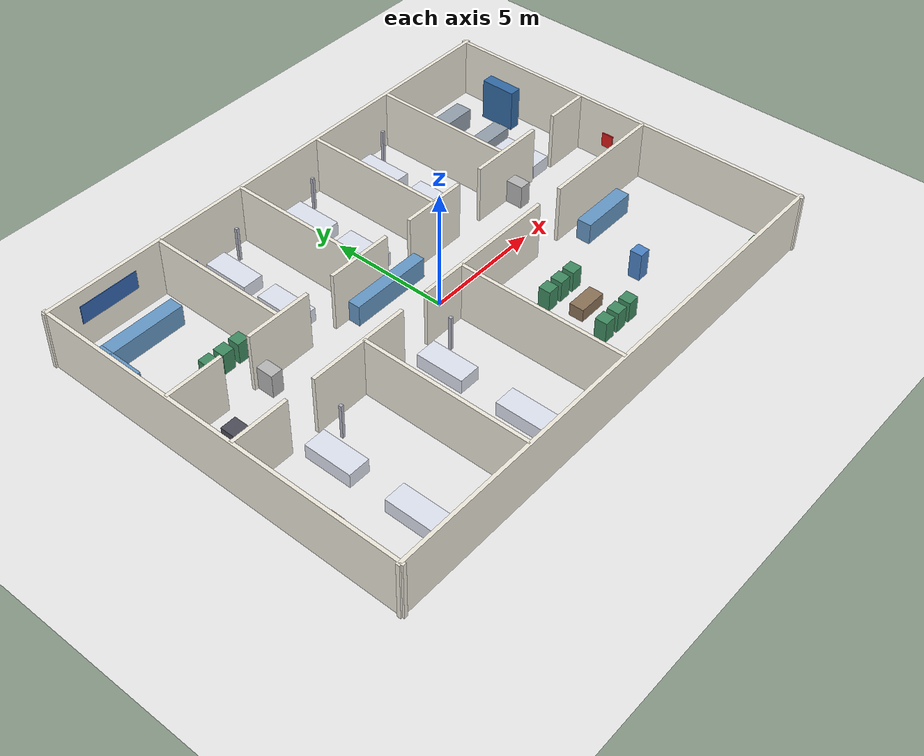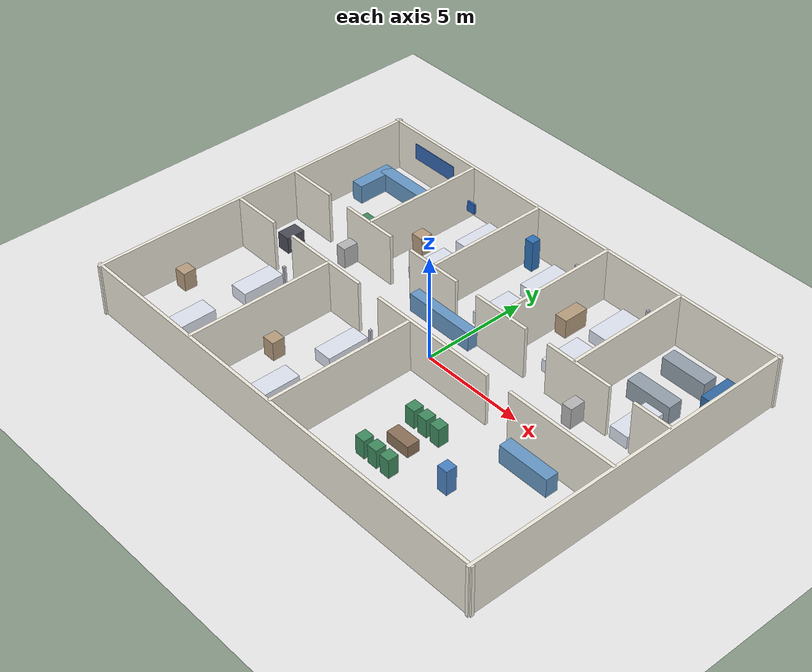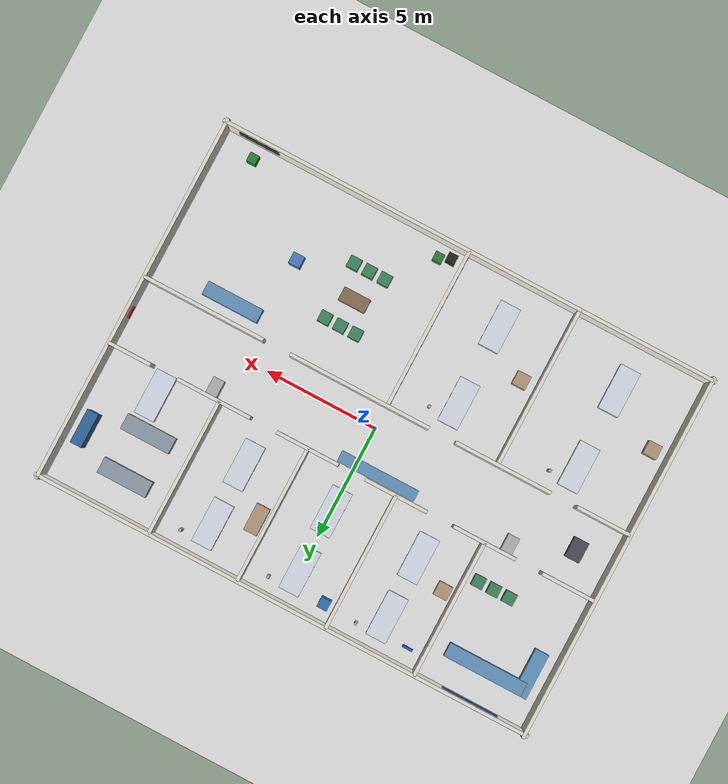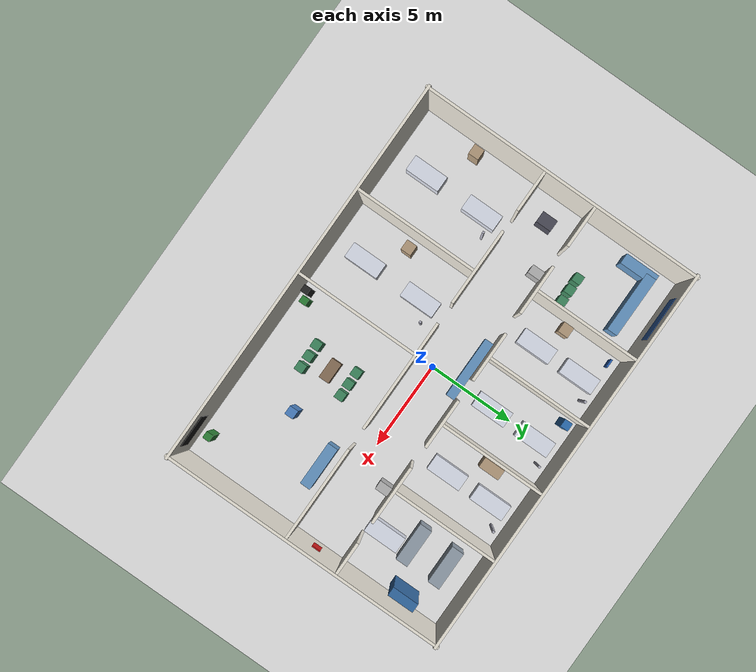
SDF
<?xml version="1.0" ?>
<sdf version="1.6">
  <world name="hospital_world">

    <physics type="ode">
      <real_time_update_rate>1000.0</real_time_update_rate>
      <max_step_size>0.001</max_step_size>
      <real_time_factor>1</real_time_factor>
    </physics>

    <include><uri>model://sun</uri></include>

    <!-- Hospital floor (light grey/white) -->
    <model name="ground_plane">
      <static>true</static>
      <link name="link">
        <collision name="col">
          <geometry><plane><normal>0 0 1</normal><size>40 40</size></plane></geometry>
        </collision>
        <visual name="vis">
          <geometry><plane><normal>0 0 1</normal><size>40 40</size></plane></geometry>
          <material><ambient>0.92 0.92 0.92 1</ambient><diffuse>0.92 0.92 0.92 1</diffuse></material>
        </visual>
      </link>
    </model>

    <!-- OUTER BOUNDARY  x[-11,11]  y[-8,8]                     -->

    <model name="outer_north">
      <static>true</static><pose>0 8 1.25 0 0 0</pose>
      <link name="link">
        <collision name="col"><geometry><box><size>22.3 0.15 2.5</size></box></geometry></collision>
        <visual name="vis"><geometry><box><size>22.3 0.15 2.5</size></box></geometry>
          <material><ambient>0.94 0.92 0.87 1</ambient><diffuse>0.94 0.92 0.87 1</diffuse></material></visual>
      </link>
    </model>

    <model name="outer_south">
      <static>true</static><pose>0 -8 1.25 0 0 0</pose>
      <link name="link">
        <collision name="col"><geometry><box><size>22.3 0.15 2.5</size></box></geometry></collision>
        <visual name="vis"><geometry><box><size>22.3 0.15 2.5</size></box></geometry>
          <material><ambient>0.94 0.92 0.87 1</ambient><diffuse>0.94 0.92 0.87 1</diffuse></material></visual>
      </link>
    </model>

    <model name="outer_east">
      <static>true</static><pose>11 0 1.25 0 0 0</pose>
      <link name="link">
        <collision name="col"><geometry><box><size>0.15 16.3 2.5</size></box></geometry></collision>
        <visual name="vis"><geometry><box><size>0.15 16.3 2.5</size></box></geometry>
          <material><ambient>0.94 0.92 0.87 1</ambient><diffuse>0.94 0.92 0.87 1</diffuse></material></visual>
      </link>
    </model>

    <model name="outer_west">
      <static>true</static><pose>-11 0 1.25 0 0 0</pose>
      <link name="link">
        <collision name="col"><geometry><box><size>0.15 16.3 2.5</size></box></geometry></collision>
        <visual name="vis"><geometry><box><size>0.15 16.3 2.5</size></box></geometry>
          <material><ambient>0.94 0.92 0.87 1</ambient><diffuse>0.94 0.92 0.87 1</diffuse></material></visual>
      </link>
    </model>

    <!-- NORTH CORRIDOR WALL  y=2  — 5 doors at x=-8,-4,0,4,8.5 -->
    <!-- Rooms A(-11,-6) B(-6,-2) C(-2,2) D(2,6) E(6,11)        -->

    <model name="ncw_1"><static>true</static><pose>-9.8 2 1.25 0 0 0</pose>
      <link name="link">
        <collision name="col"><geometry><box><size>2.4 0.15 2.5</size></box></geometry></collision>
        <visual name="vis"><geometry><box><size>2.4 0.15 2.5</size></box></geometry>
          <material><ambient>0.94 0.92 0.87 1</ambient><diffuse>0.94 0.92 0.87 1</diffuse></material></visual>
      </link>
    </model><!-- door -8 -->
    <model name="ncw_2"><static>true</static><pose>-6.0 2 1.25 0 0 0</pose>
      <link name="link">
        <collision name="col"><geometry><box><size>2.8 0.15 2.5</size></box></geometry></collision>
        <visual name="vis"><geometry><box><size>2.8 0.15 2.5</size></box></geometry>
          <material><ambient>0.94 0.92 0.87 1</ambient><diffuse>0.94 0.92 0.87 1</diffuse></material></visual>
      </link>
    </model><!-- door -4 -->
    <model name="ncw_3"><static>true</static><pose>-2.0 2 1.25 0 0 0</pose>
      <link name="link">
        <collision name="col"><geometry><box><size>2.8 0.15 2.5</size></box></geometry></collision>
        <visual name="vis"><geometry><box><size>2.8 0.15 2.5</size></box></geometry>
          <material><ambient>0.94 0.92 0.87 1</ambient><diffuse>0.94 0.92 0.87 1</diffuse></material></visual>
      </link>
    </model><!-- door 0 -->
    <model name="ncw_4"><static>true</static><pose>2.0 2 1.25 0 0 0</pose>
      <link name="link">
        <collision name="col"><geometry><box><size>2.8 0.15 2.5</size></box></geometry></collision>
        <visual name="vis"><geometry><box><size>2.8 0.15 2.5</size></box></geometry>
          <material><ambient>0.94 0.92 0.87 1</ambient><diffuse>0.94 0.92 0.87 1</diffuse></material></visual>
      </link>
    </model><!-- door 4 -->
    <model name="ncw_5"><static>true</static><pose>6.25 2 1.25 0 0 0</pose>
      <link name="link">
        <collision name="col"><geometry><box><size>3.3 0.15 2.5</size></box></geometry></collision>
        <visual name="vis"><geometry><box><size>3.3 0.15 2.5</size></box></geometry>
          <material><ambient>0.94 0.92 0.87 1</ambient><diffuse>0.94 0.92 0.87 1</diffuse></material></visual>
      </link>
    </model><!-- door 8.5 -->
    <model name="ncw_6"><static>true</static><pose>10.05 2 1.25 0 0 0</pose>
      <link name="link">
        <collision name="col"><geometry><box><size>1.9 0.15 2.5</size></box></geometry></collision>
        <visual name="vis"><geometry><box><size>1.9 0.15 2.5</size></box></geometry>
          <material><ambient>0.94 0.92 0.87 1</ambient><diffuse>0.94 0.92 0.87 1</diffuse></material></visual>
      </link>
    </model>

    <!-- SOUTH CORRIDOR WALL  y=-1  — 3 doors at x=-8,-2.5,5   -->
    <!-- Rooms F(-11,-5)  G(-5,0)  H(0,11)                     -->

    <model name="scw_1"><static>true</static><pose>-9.8 -1 1.25 0 0 0</pose>
      <link name="link">
        <collision name="col"><geometry><box><size>2.4 0.15 2.5</size></box></geometry></collision>
        <visual name="vis"><geometry><box><size>2.4 0.15 2.5</size></box></geometry>
          <material><ambient>0.94 0.92 0.87 1</ambient><diffuse>0.94 0.92 0.87 1</diffuse></material></visual>
      </link>
    </model><!-- door -8 -->
    <model name="scw_2"><static>true</static><pose>-5.25 -1 1.25 0 0 0</pose>
      <link name="link">
        <collision name="col"><geometry><box><size>4.3 0.15 2.5</size></box></geometry></collision>
        <visual name="vis"><geometry><box><size>4.3 0.15 2.5</size></box></geometry>
          <material><ambient>0.94 0.92 0.87 1</ambient><diffuse>0.94 0.92 0.87 1</diffuse></material></visual>
      </link>
    </model><!-- door -2.5 -->
    <model name="scw_3"><static>true</static><pose>1.25 -1 1.25 0 0 0</pose>
      <link name="link">
        <collision name="col"><geometry><box><size>6.3 0.15 2.5</size></box></geometry></collision>
        <visual name="vis"><geometry><box><size>6.3 0.15 2.5</size></box></geometry>
          <material><ambient>0.94 0.92 0.87 1</ambient><diffuse>0.94 0.92 0.87 1</diffuse></material></visual>
      </link>
    </model><!-- door 5 -->
    <model name="scw_4"><static>true</static><pose>8.3 -1 1.25 0 0 0</pose>
      <link name="link">
        <collision name="col"><geometry><box><size>5.4 0.15 2.5</size></box></geometry></collision>
        <visual name="vis"><geometry><box><size>5.4 0.15 2.5</size></box></geometry>
          <material><ambient>0.94 0.92 0.87 1</ambient><diffuse>0.94 0.92 0.87 1</diffuse></material></visual>
      </link>
    </model>

    <!-- NORTH ROOM DIVIDERS  x=-6,-2,2,6  y:2→8               -->

    <model name="ndiv_AB"><static>true</static><pose>-6 5 1.25 0 0 0</pose>
      <link name="link">
        <collision name="col"><geometry><box><size>0.15 6 2.5</size></box></geometry></collision>
        <visual name="vis"><geometry><box><size>0.15 6 2.5</size></box></geometry>
          <material><ambient>0.94 0.92 0.87 1</ambient><diffuse>0.94 0.92 0.87 1</diffuse></material></visual>
      </link>
    </model>
    <model name="ndiv_BC"><static>true</static><pose>-2 5 1.25 0 0 0</pose>
      <link name="link">
        <collision name="col"><geometry><box><size>0.15 6 2.5</size></box></geometry></collision>
        <visual name="vis"><geometry><box><size>0.15 6 2.5</size></box></geometry>
          <material><ambient>0.94 0.92 0.87 1</ambient><diffuse>0.94 0.92 0.87 1</diffuse></material></visual>
      </link>
    </model>
    <model name="ndiv_CD"><static>true</static><pose>2 5 1.25 0 0 0</pose>
      <link name="link">
        <collision name="col"><geometry><box><size>0.15 6 2.5</size></box></geometry></collision>
        <visual name="vis"><geometry><box><size>0.15 6 2.5</size></box></geometry>
          <material><ambient>0.94 0.92 0.87 1</ambient><diffuse>0.94 0.92 0.87 1</diffuse></material></visual>
      </link>
    </model>
    <model name="ndiv_DE"><static>true</static><pose>6 5 1.25 0 0 0</pose>
      <link name="link">
        <collision name="col"><geometry><box><size>0.15 6 2.5</size></box></geometry></collision>
        <visual name="vis"><geometry><box><size>0.15 6 2.5</size></box></geometry>
          <material><ambient>0.94 0.92 0.87 1</ambient><diffuse>0.94 0.92 0.87 1</diffuse></material></visual>
      </link>
    </model>

    <!-- SOUTH ROOM DIVIDERS  x=-5,0  y:-8→-1                  -->

    <model name="sdiv_FG"><static>true</static><pose>-5 -4.5 1.25 0 0 0</pose>
      <link name="link">
        <collision name="col"><geometry><box><size>0.15 7 2.5</size></box></geometry></collision>
        <visual name="vis"><geometry><box><size>0.15 7 2.5</size></box></geometry>
          <material><ambient>0.94 0.92 0.87 1</ambient><diffuse>0.94 0.92 0.87 1</diffuse></material></visual>
      </link>
    </model>
    <model name="sdiv_GH"><static>true</static><pose>0 -4.5 1.25 0 0 0</pose>
      <link name="link">
        <collision name="col"><geometry><box><size>0.15 7 2.5</size></box></geometry></collision>
        <visual name="vis"><geometry><box><size>0.15 7 2.5</size></box></geometry>
          <material><ambient>0.94 0.92 0.87 1</ambient><diffuse>0.94 0.92 0.87 1</diffuse></material></visual>
      </link>
    </model>

    <!-- ROOM A — RECEPTION  x:-11→-6  y:2→8                   -->

    <model name="reception_main"><static>true</static><pose>-8.5 6.5 0.45 0 0 0</pose>
      <link name="link">
        <collision name="col"><geometry><box><size>3.5 0.6 0.9</size></box></geometry></collision>
        <visual name="vis"><geometry><box><size>3.5 0.6 0.9</size></box></geometry>
          <material><ambient>0.4 0.6 0.78 1</ambient><diffuse>0.4 0.6 0.78 1</diffuse></material></visual>
      </link>
    </model>
    <model name="reception_side"><static>true</static><pose>-10.2 5.8 0.45 0 0 0</pose>
      <link name="link">
        <collision name="col"><geometry><box><size>0.6 2.0 0.9</size></box></geometry></collision>
        <visual name="vis"><geometry><box><size>0.6 2.0 0.9</size></box></geometry>
          <material><ambient>0.4 0.6 0.78 1</ambient><diffuse>0.4 0.6 0.78 1</diffuse></material></visual>
      </link>
    </model>
    <model name="info_board_A"><static>true</static><pose>-8.5 7.92 1.5 0 0 0</pose>
      <link name="link">
        <collision name="col"><geometry><box><size>2.5 0.05 0.8</size></box></geometry></collision>
        <visual name="vis"><geometry><box><size>2.5 0.05 0.8</size></box></geometry>
          <material><ambient>0.2 0.4 0.7 1</ambient><diffuse>0.2 0.4 0.7 1</diffuse></material></visual>
      </link>
    </model>
    <!-- Waiting chairs -->
    <model name="chair_A1"><static>true</static><pose>-8.0 3.5 0.45 0 0 0</pose>
      <link name="link">
        <collision name="col"><geometry><box><size>0.5 0.5 0.9</size></box></geometry></collision>
        <visual name="vis"><geometry><box><size>0.5 0.5 0.9</size></box></geometry>
          <material><ambient>0.25 0.55 0.38 1</ambient><diffuse>0.25 0.55 0.38 1</diffuse></material></visual>
      </link>
    </model>
    <model name="chair_A2"><static>true</static><pose>-7.3 3.5 0.45 0 0 0</pose>
      <link name="link">
        <collision name="col"><geometry><box><size>0.5 0.5 0.9</size></box></geometry></collision>
        <visual name="vis"><geometry><box><size>0.5 0.5 0.9</size></box></geometry>
          <material><ambient>0.25 0.55 0.38 1</ambient><diffuse>0.25 0.55 0.38 1</diffuse></material></visual>
      </link>
    </model>
    <model name="chair_A3"><static>true</static><pose>-6.6 3.5 0.45 0 0 0</pose>
      <link name="link">
        <collision name="col"><geometry><box><size>0.5 0.5 0.9</size></box></geometry></collision>
        <visual name="vis"><geometry><box><size>0.5 0.5 0.9</size></box></geometry>
          <material><ambient>0.25 0.55 0.38 1</ambient><diffuse>0.25 0.55 0.38 1</diffuse></material></visual>
      </link>
    </model>

    <!-- ROOM B — PATIENT 1  x:-6→-2  y:2→8                    -->

    <model name="bed_B1"><static>true</static><pose>-4 6.5 0.3 0 0 0</pose>
      <link name="link">
        <collision name="col"><geometry><box><size>0.9 2.0 0.6</size></box></geometry></collision>
        <visual name="vis"><geometry><box><size>0.9 2.0 0.6</size></box></geometry>
          <material><ambient>0.88 0.90 0.95 1</ambient><diffuse>0.88 0.90 0.95 1</diffuse></material></visual>
      </link>
    </model>
    <model name="bed_B2"><static>true</static><pose>-4 3.8 0.3 0 0 0</pose>
      <link name="link">
        <collision name="col"><geometry><box><size>0.9 2.0 0.6</size></box></geometry></collision>
        <visual name="vis"><geometry><box><size>0.9 2.0 0.6</size></box></geometry>
          <material><ambient>0.88 0.90 0.95 1</ambient><diffuse>0.88 0.90 0.95 1</diffuse></material></visual>
      </link>
    </model>
    <model name="iv_B1"><static>true</static><pose>-3.0 7.3 0.75 0 0 0</pose>
      <link name="link">
        <collision name="col"><geometry><box><size>0.12 0.12 1.5</size></box></geometry></collision>
        <visual name="vis"><geometry><box><size>0.12 0.12 1.5</size></box></geometry>
          <material><ambient>0.72 0.72 0.78 1</ambient><diffuse>0.72 0.72 0.78 1</diffuse></material></visual>
      </link>
    </model>
    <model name="monitor_B"><static>true</static><pose>-5.3 7.2 1.1 0 0 0</pose>
      <link name="link">
        <collision name="col"><geometry><box><size>0.45 0.1 0.5</size></box></geometry></collision>
        <visual name="vis"><geometry><box><size>0.45 0.1 0.5</size></box></geometry>
          <material><ambient>0.15 0.38 0.72 1</ambient><diffuse>0.15 0.38 0.72 1</diffuse></material></visual>
      </link>
    </model>
    <model name="cabinet_B"><static>true</static><pose>-5.5 4.5 0.45 0 0 0</pose>
      <link name="link">
        <collision name="col"><geometry><box><size>0.6 0.6 0.9</size></box></geometry></collision>
        <visual name="vis"><geometry><box><size>0.6 0.6 0.9</size></box></geometry>
          <material><ambient>0.72 0.62 0.5 1</ambient><diffuse>0.72 0.62 0.5 1</diffuse></material></visual>
      </link>
    </model>

    <!-- ROOM C — PATIENT 2  x:-2→2  y:2→8                     -->

    <model name="bed_C1"><static>true</static><pose>0 6.5 0.3 0 0 0</pose>
      <link name="link">
        <collision name="col"><geometry><box><size>0.9 2.0 0.6</size></box></geometry></collision>
        <visual name="vis"><geometry><box><size>0.9 2.0 0.6</size></box></geometry>
          <material><ambient>0.88 0.90 0.95 1</ambient><diffuse>0.88 0.90 0.95 1</diffuse></material></visual>
      </link>
    </model>
    <model name="bed_C2"><static>true</static><pose>0 3.8 0.3 0 0 0</pose>
      <link name="link">
        <collision name="col"><geometry><box><size>0.9 2.0 0.6</size></box></geometry></collision>
        <visual name="vis"><geometry><box><size>0.9 2.0 0.6</size></box></geometry>
          <material><ambient>0.88 0.90 0.95 1</ambient><diffuse>0.88 0.90 0.95 1</diffuse></material></visual>
      </link>
    </model>
    <model name="equip_C"><static>true</static><pose>-1.5 7.2 0.75 0 0 0</pose>
      <link name="link">
        <collision name="col"><geometry><box><size>0.45 0.45 1.5</size></box></geometry></collision>
        <visual name="vis"><geometry><box><size>0.45 0.45 1.5</size></box></geometry>
          <material><ambient>0.18 0.45 0.72 1</ambient><diffuse>0.18 0.45 0.72 1</diffuse></material></visual>
      </link>
    </model>
    <model name="iv_C1"><static>true</static><pose>1.0 7.3 0.75 0 0 0</pose>
      <link name="link">
        <collision name="col"><geometry><box><size>0.12 0.12 1.5</size></box></geometry></collision>
        <visual name="vis"><geometry><box><size>0.12 0.12 1.5</size></box></geometry>
          <material><ambient>0.72 0.72 0.78 1</ambient><diffuse>0.72 0.72 0.78 1</diffuse></material></visual>
      </link>
    </model>

    <!-- ROOM D — PATIENT 3  x:2→6  y:2→8                      -->

    <model name="bed_D1"><static>true</static><pose>4 6.5 0.3 0 0 0</pose>
      <link name="link">
        <collision name="col"><geometry><box><size>0.9 2.0 0.6</size></box></geometry></collision>
        <visual name="vis"><geometry><box><size>0.9 2.0 0.6</size></box></geometry>
          <material><ambient>0.88 0.90 0.95 1</ambient><diffuse>0.88 0.90 0.95 1</diffuse></material></visual>
      </link>
    </model>
    <model name="bed_D2"><static>true</static><pose>4 3.8 0.3 0 0 0</pose>
      <link name="link">
        <collision name="col"><geometry><box><size>0.9 2.0 0.6</size></box></geometry></collision>
        <visual name="vis"><geometry><box><size>0.9 2.0 0.6</size></box></geometry>
          <material><ambient>0.88 0.90 0.95 1</ambient><diffuse>0.88 0.90 0.95 1</diffuse></material></visual>
      </link>
    </model>
    <model name="iv_D1"><static>true</static><pose>5.0 7.3 0.75 0 0 0</pose>
      <link name="link">
        <collision name="col"><geometry><box><size>0.12 0.12 1.5</size></box></geometry></collision>
        <visual name="vis"><geometry><box><size>0.12 0.12 1.5</size></box></geometry>
          <material><ambient>0.72 0.72 0.78 1</ambient><diffuse>0.72 0.72 0.78 1</diffuse></material></visual>
      </link>
    </model>
    <model name="desk_D"><static>true</static><pose>2.5 5.5 0.45 0 0 0</pose>
      <link name="link">
        <collision name="col"><geometry><box><size>0.6 1.2 0.9</size></box></geometry></collision>
        <visual name="vis"><geometry><box><size>0.6 1.2 0.9</size></box></geometry>
          <material><ambient>0.72 0.62 0.5 1</ambient><diffuse>0.72 0.62 0.5 1</diffuse></material></visual>
      </link>
    </model>

    <!-- ROOM E — STAFF / ICU  x:6→11  y:2→8                   -->

    <model name="workstation_E1"><static>true</static><pose>8 6.5 0.45 0 0 0</pose>
      <link name="link">
        <collision name="col"><geometry><box><size>2.2 0.7 0.9</size></box></geometry></collision>
        <visual name="vis"><geometry><box><size>2.2 0.7 0.9</size></box></geometry>
          <material><ambient>0.58 0.63 0.68 1</ambient><diffuse>0.58 0.63 0.68 1</diffuse></material></visual>
      </link>
    </model>
    <model name="workstation_E2"><static>true</static><pose>8 4.5 0.45 0 0 0</pose>
      <link name="link">
        <collision name="col"><geometry><box><size>2.2 0.7 0.9</size></box></geometry></collision>
        <visual name="vis"><geometry><box><size>2.2 0.7 0.9</size></box></geometry>
          <material><ambient>0.58 0.63 0.68 1</ambient><diffuse>0.58 0.63 0.68 1</diffuse></material></visual>
      </link>
    </model>
    <model name="equip_rack_E"><static>true</static><pose>10.3 5.5 0.9 0 0 0</pose>
      <link name="link">
        <collision name="col"><geometry><box><size>0.5 1.5 1.8</size></box></geometry></collision>
        <visual name="vis"><geometry><box><size>0.5 1.5 1.8</size></box></geometry>
          <material><ambient>0.2 0.42 0.65 1</ambient><diffuse>0.2 0.42 0.65 1</diffuse></material></visual>
      </link>
    </model>
    <model name="icu_bed_E"><static>true</static><pose>8.5 3.0 0.3 0 0 0</pose>
      <link name="link">
        <collision name="col"><geometry><box><size>0.9 2.0 0.6</size></box></geometry></collision>
        <visual name="vis"><geometry><box><size>0.9 2.0 0.6</size></box></geometry>
          <material><ambient>0.88 0.90 0.95 1</ambient><diffuse>0.88 0.90 0.95 1</diffuse></material></visual>
      </link>
    </model>

    <!-- CORRIDOR  y:-1→2  — Nurse station pushed to north side  -->
    <!-- Robot spawns at (-2, -0.5) — keep south lane clear      -->

    <model name="nurse_station"><static>true</static><pose>-1 1.65 0.45 0 0 0</pose>
      <link name="link">
        <collision name="col"><geometry><box><size>3.5 0.5 0.9</size></box></geometry></collision>
        <visual name="vis"><geometry><box><size>3.5 0.5 0.9</size></box></geometry>
          <material><ambient>0.4 0.6 0.78 1</ambient><diffuse>0.4 0.6 0.78 1</diffuse></material></visual>
      </link>
    </model>
    <model name="med_cart_east"><static>true</static><pose>6.5 1.6 0.5 0 0 0</pose>
      <link name="link">
        <collision name="col"><geometry><box><size>0.5 0.8 1.0</size></box></geometry></collision>
        <visual name="vis"><geometry><box><size>0.5 0.8 1.0</size></box></geometry>
          <material><ambient>0.72 0.72 0.72 1</ambient><diffuse>0.72 0.72 0.72 1</diffuse></material></visual>
      </link>
    </model>
    <model name="med_cart_west"><static>true</static><pose>-7.0 1.6 0.5 0 0 0</pose>
      <link name="link">
        <collision name="col"><geometry><box><size>0.5 0.8 1.0</size></box></geometry></collision>
        <visual name="vis"><geometry><box><size>0.5 0.8 1.0</size></box></geometry>
          <material><ambient>0.72 0.72 0.72 1</ambient><diffuse>0.72 0.72 0.72 1</diffuse></material></visual>
      </link>
    </model>
    <model name="wheelchair"><static>true</static><pose>-9.5 0.5 0.4 0 0 0</pose>
      <link name="link">
        <collision name="col"><geometry><box><size>0.65 0.9 0.8</size></box></geometry></collision>
        <visual name="vis"><geometry><box><size>0.65 0.9 0.8</size></box></geometry>
          <material><ambient>0.3 0.3 0.35 1</ambient><diffuse>0.3 0.3 0.35 1</diffuse></material></visual>
      </link>
    </model>
    <model name="emergency_box"><static>true</static><pose>10.92 0.5 1.0 0 0 0</pose>
      <link name="link">
        <collision name="col"><geometry><box><size>0.1 0.5 0.6</size></box></geometry></collision>
        <visual name="vis"><geometry><box><size>0.1 0.5 0.6</size></box></geometry>
          <material><ambient>0.85 0.1 0.1 1</ambient><diffuse>0.85 0.1 0.1 1</diffuse></material></visual>
      </link>
    </model>

    <!-- ROOM F — PATIENT 4  x:-11→-5  y:-8→-1                 -->

    <model name="bed_F1"><static>true</static><pose>-8 -2.5 0.3 0 0 0</pose>
      <link name="link">
        <collision name="col"><geometry><box><size>0.9 2.0 0.6</size></box></geometry></collision>
        <visual name="vis"><geometry><box><size>0.9 2.0 0.6</size></box></geometry>
          <material><ambient>0.88 0.90 0.95 1</ambient><diffuse>0.88 0.90 0.95 1</diffuse></material></visual>
      </link>
    </model>
    <model name="bed_F2"><static>true</static><pose>-8 -6.0 0.3 0 0 0</pose>
      <link name="link">
        <collision name="col"><geometry><box><size>0.9 2.0 0.6</size></box></geometry></collision>
        <visual name="vis"><geometry><box><size>0.9 2.0 0.6</size></box></geometry>
          <material><ambient>0.88 0.90 0.95 1</ambient><diffuse>0.88 0.90 0.95 1</diffuse></material></visual>
      </link>
    </model>
    <model name="iv_F1"><static>true</static><pose>-7.0 -1.8 0.75 0 0 0</pose>
      <link name="link">
        <collision name="col"><geometry><box><size>0.12 0.12 1.5</size></box></geometry></collision>
        <visual name="vis"><geometry><box><size>0.12 0.12 1.5</size></box></geometry>
          <material><ambient>0.72 0.72 0.78 1</ambient><diffuse>0.72 0.72 0.78 1</diffuse></material></visual>
      </link>
    </model>
    <model name="cabinet_F"><static>true</static><pose>-10.3 -4.5 0.45 0 0 0</pose>
      <link name="link">
        <collision name="col"><geometry><box><size>0.6 0.6 0.9</size></box></geometry></collision>
        <visual name="vis"><geometry><box><size>0.6 0.6 0.9</size></box></geometry>
          <material><ambient>0.72 0.62 0.5 1</ambient><diffuse>0.72 0.62 0.5 1</diffuse></material></visual>
      </link>
    </model>

    <!-- ROOM G — PATIENT 5  x:-5→0  y:-8→-1                   -->

    <model name="bed_G1"><static>true</static><pose>-2.5 -2.5 0.3 0 0 0</pose>
      <link name="link">
        <collision name="col"><geometry><box><size>0.9 2.0 0.6</size></box></geometry></collision>
        <visual name="vis"><geometry><box><size>0.9 2.0 0.6</size></box></geometry>
          <material><ambient>0.88 0.90 0.95 1</ambient><diffuse>0.88 0.90 0.95 1</diffuse></material></visual>
      </link>
    </model>
    <model name="bed_G2"><static>true</static><pose>-2.5 -6.0 0.3 0 0 0</pose>
      <link name="link">
        <collision name="col"><geometry><box><size>0.9 2.0 0.6</size></box></geometry></collision>
        <visual name="vis"><geometry><box><size>0.9 2.0 0.6</size></box></geometry>
          <material><ambient>0.88 0.90 0.95 1</ambient><diffuse>0.88 0.90 0.95 1</diffuse></material></visual>
      </link>
    </model>
    <model name="cabinet_G"><static>true</static><pose>-4.3 -4.5 0.45 0 0 0</pose>
      <link name="link">
        <collision name="col"><geometry><box><size>0.6 0.6 0.9</size></box></geometry></collision>
        <visual name="vis"><geometry><box><size>0.6 0.6 0.9</size></box></geometry>
          <material><ambient>0.72 0.62 0.5 1</ambient><diffuse>0.72 0.62 0.5 1</diffuse></material></visual>
      </link>
    </model>
    <model name="iv_G1"><static>true</static><pose>-1.5 -1.8 0.75 0 0 0</pose>
      <link name="link">
        <collision name="col"><geometry><box><size>0.12 0.12 1.5</size></box></geometry></collision>
        <visual name="vis"><geometry><box><size>0.12 0.12 1.5</size></box></geometry>
          <material><ambient>0.72 0.72 0.78 1</ambient><diffuse>0.72 0.72 0.78 1</diffuse></material></visual>
      </link>
    </model>

    <!-- ROOM H — WAITING AREA  x:0→11  y:-8→-1                -->

    <!-- Seating rows (2 rows of 3) -->
    <model name="chair_H1"><static>true</static><pose>2.5 -3.0 0.45 0 0 0</pose>
      <link name="link">
        <collision name="col"><geometry><box><size>0.5 0.5 0.9</size></box></geometry></collision>
        <visual name="vis"><geometry><box><size>0.5 0.5 0.9</size></box></geometry>
          <material><ambient>0.25 0.55 0.38 1</ambient><diffuse>0.25 0.55 0.38 1</diffuse></material></visual>
      </link>
    </model>
    <model name="chair_H2"><static>true</static><pose>3.2 -3.0 0.45 0 0 0</pose>
      <link name="link">
        <collision name="col"><geometry><box><size>0.5 0.5 0.9</size></box></geometry></collision>
        <visual name="vis"><geometry><box><size>0.5 0.5 0.9</size></box></geometry>
          <material><ambient>0.25 0.55 0.38 1</ambient><diffuse>0.25 0.55 0.38 1</diffuse></material></visual>
      </link>
    </model>
    <model name="chair_H3"><static>true</static><pose>3.9 -3.0 0.45 0 0 0</pose>
      <link name="link">
        <collision name="col"><geometry><box><size>0.5 0.5 0.9</size></box></geometry></collision>
        <visual name="vis"><geometry><box><size>0.5 0.5 0.9</size></box></geometry>
          <material><ambient>0.25 0.55 0.38 1</ambient><diffuse>0.25 0.55 0.38 1</diffuse></material></visual>
      </link>
    </model>
    <model name="chair_H4"><static>true</static><pose>2.5 -5.5 0.45 0 0 0</pose>
      <link name="link">
        <collision name="col"><geometry><box><size>0.5 0.5 0.9</size></box></geometry></collision>
        <visual name="vis"><geometry><box><size>0.5 0.5 0.9</size></box></geometry>
          <material><ambient>0.25 0.55 0.38 1</ambient><diffuse>0.25 0.55 0.38 1</diffuse></material></visual>
      </link>
    </model>
    <model name="chair_H5"><static>true</static><pose>3.2 -5.5 0.45 0 0 0</pose>
      <link name="link">
        <collision name="col"><geometry><box><size>0.5 0.5 0.9</size></box></geometry></collision>
        <visual name="vis"><geometry><box><size>0.5 0.5 0.9</size></box></geometry>
          <material><ambient>0.25 0.55 0.38 1</ambient><diffuse>0.25 0.55 0.38 1</diffuse></material></visual>
      </link>
    </model>
    <model name="chair_H6"><static>true</static><pose>3.9 -5.5 0.45 0 0 0</pose>
      <link name="link">
        <collision name="col"><geometry><box><size>0.5 0.5 0.9</size></box></geometry></collision>
        <visual name="vis"><geometry><box><size>0.5 0.5 0.9</size></box></geometry>
          <material><ambient>0.25 0.55 0.38 1</ambient><diffuse>0.25 0.55 0.38 1</diffuse></material></visual>
      </link>
    </model>
    <model name="coffee_table_H"><static>true</static><pose>3.2 -4.2 0.28 0 0 0</pose>
      <link name="link">
        <collision name="col"><geometry><box><size>1.2 0.6 0.55</size></box></geometry></collision>
        <visual name="vis"><geometry><box><size>1.2 0.6 0.55</size></box></geometry>
          <material><ambient>0.55 0.45 0.35 1</ambient><diffuse>0.55 0.45 0.35 1</diffuse></material></visual>
      </link>
    </model>
    <!-- TV on south wall -->
    <model name="tv_H"><static>true</static><pose>9.5 -7.92 1.5 0 0 0</pose>
      <link name="link">
        <collision name="col"><geometry><box><size>1.8 0.06 0.9</size></box></geometry></collision>
        <visual name="vis"><geometry><box><size>1.8 0.06 0.9</size></box></geometry>
          <material><ambient>0.1 0.1 0.1 1</ambient><diffuse>0.1 0.1 0.1 1</diffuse></material></visual>
      </link>
    </model>
    <!-- Information kiosk -->
    <model name="kiosk_H"><static>true</static><pose>6.0 -4.5 0.6 0 0 0</pose>
      <link name="link">
        <collision name="col"><geometry><box><size>0.5 0.5 1.2</size></box></geometry></collision>
        <visual name="vis"><geometry><box><size>0.5 0.5 1.2</size></box></geometry>
          <material><ambient>0.3 0.52 0.78 1</ambient><diffuse>0.3 0.52 0.78 1</diffuse></material></visual>
      </link>
    </model>
    <!-- Plants -->
    <model name="plant_H1"><static>true</static><pose>1.0 -7.3 0.5 0 0 0</pose>
      <link name="link">
        <collision name="col"><geometry><box><size>0.4 0.4 1.0</size></box></geometry></collision>
        <visual name="vis"><geometry><box><size>0.4 0.4 1.0</size></box></geometry>
          <material><ambient>0.18 0.52 0.22 1</ambient><diffuse>0.18 0.52 0.22 1</diffuse></material></visual>
      </link>
    </model>
    <model name="plant_H2"><static>true</static><pose>9.5 -7.3 0.5 0 0 0</pose>
      <link name="link">
        <collision name="col"><geometry><box><size>0.4 0.4 1.0</size></box></geometry></collision>
        <visual name="vis"><geometry><box><size>0.4 0.4 1.0</size></box></geometry>
          <material><ambient>0.18 0.52 0.22 1</ambient><diffuse>0.18 0.52 0.22 1</diffuse></material></visual>
      </link>
    </model>
    <!-- Reception desk in waiting -->
    <model name="desk_H"><static>true</static><pose>7.5 -1.8 0.45 0 0 0</pose>
      <link name="link">
        <collision name="col"><geometry><box><size>2.5 0.6 0.9</size></box></geometry></collision>
        <visual name="vis"><geometry><box><size>2.5 0.6 0.9</size></box></geometry>
          <material><ambient>0.4 0.6 0.78 1</ambient><diffuse>0.4 0.6 0.78 1</diffuse></material></visual>
      </link>
    </model>
    <!-- Coffee machine -->
    <model name="coffee_machine_H"><static>true</static><pose>0.5 -7.5 0.6 0 0 0</pose>
      <link name="link">
        <collision name="col"><geometry><box><size>0.4 0.4 1.2</size></box></geometry></collision>
        <visual name="vis"><geometry><box><size>0.4 0.4 1.2</size></box></geometry>
          <material><ambient>0.15 0.15 0.15 1</ambient><diffuse>0.15 0.15 0.15 1</diffuse></material></visual>
      </link>
    </model>

  </world>
</sdf>
